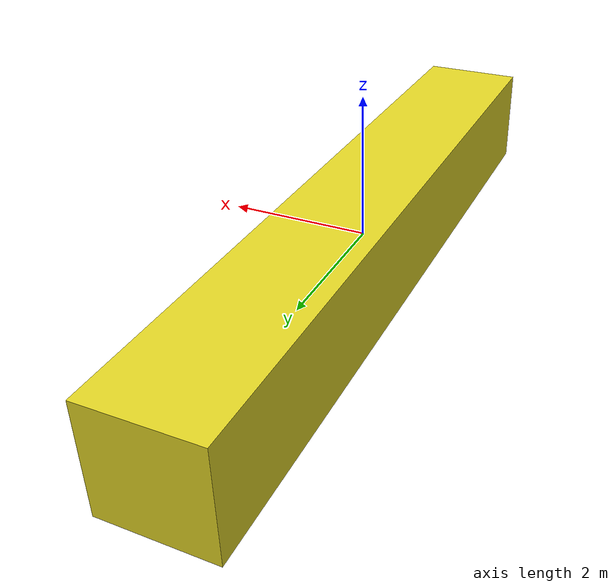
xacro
<?xml version="1.0"?>
<robot name="goal" xmlns:xacro="http://www.ros.org/wiki/xacro">
	<xacro:property name="pi" value="3.1415926535897931"/>
	<gazebo>
		<static>true</static>
		<turnGravityOff>false</turnGravityOff>
	</gazebo>

	<gazebo reference="base_link_goal">
		<material>Gazebo/YellowTransparent</material>
	</gazebo>

	<link name="base_link_goal">
		<inertial>
			<origin xyz="0 0 0" rpy="0 0 0"/>
			<mass value="0.1"/>
			<inertia ixx="0.1" ixy="0.0" ixz="0.0" iyy="0.1" iyz="0.0" izz="0.1"/>
		</inertial>

		<visual name="visual">
			<origin xyz="0 0 0" rpy="0 0 0"/>
			<geometry>
				<box size="1.5 10 1.5"/>
			</geometry>
		</visual>
	</link>

</robot>
